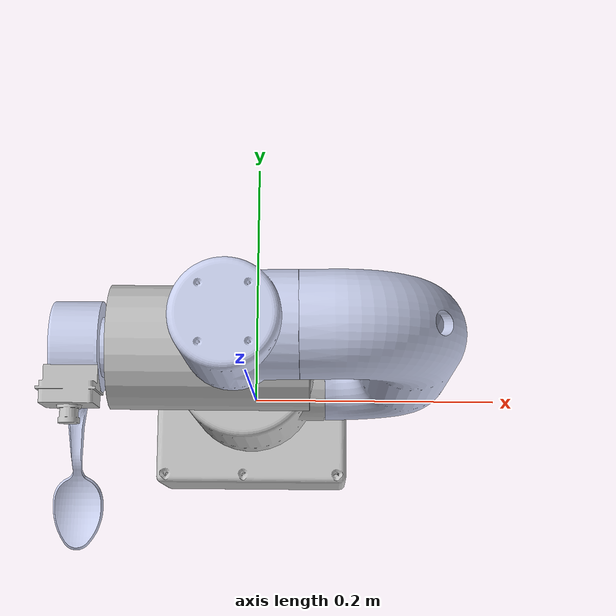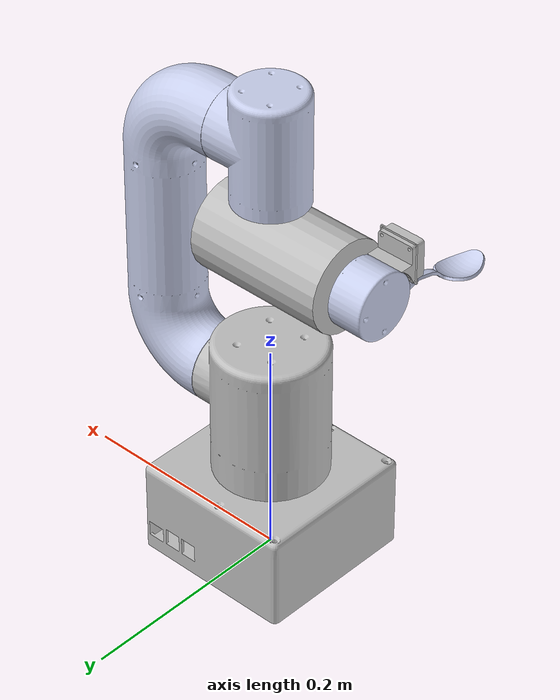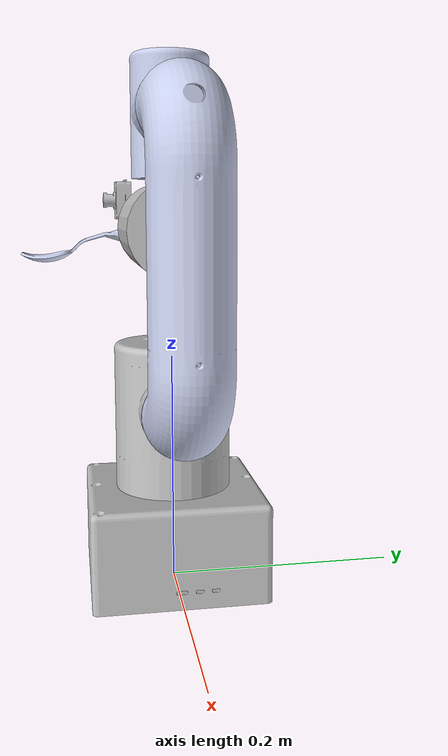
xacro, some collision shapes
<?xml version="1.0"?>
<robot xmlns:xacro="http://www.ros.org/wiki/xacro" name="FOBOT">
    <xacro:arg name="initial_positions_file" default="initial_positions.yaml" />

    <!-- Import FOBOT urdf file -->
    <xacro:include filename="$(find robot_pkg)/urdf/robot.urdf.xacro" />

    <!-- Import control_xacro -->
    <xacro:include filename="FOBOT.ros2_control.xacro" />

    <xacro:FOBOT_ros2_control name="FakeSystem" initial_positions_file="$(arg initial_positions_file)"/>

</robot>

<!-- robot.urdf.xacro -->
<robot
  name="FOBOT" xmlns:xacro="http://www.ros.org/wiki/xacro">
  <link name="world_link" />

  <joint name="world_joint" type="fixed">
    <parent link="world_link" />
    <child link="base_link" />
    <origin xyz="0 0 0" rpy="0 0 0" />
  </joint>
  <link
    name="base_link">
    <inertial>
      <origin
        xyz="-0.000324527792386832 0.000535590007123509 0.0536555243566054"
        rpy="0 0 0" />
      <mass
        value="0.640667020480894" />
      <inertia
        ixx="0.00143547613681385"
        ixy="2.95444591614989E-05"
        ixz="4.77247209910437E-06"
        iyy="0.00139278953446347"
        iyz="5.88479191836546E-06"
        izz="0.00256812979918848" />
    </inertial>
    <visual>
      <origin
        xyz="0 0 0"
        rpy="0 0 0" />
      <geometry>
        <mesh
          filename="package://robot_pkg/urdf/meshes/base_link.STL" />
      </geometry>
      <material
        name="">
        <color
          rgba="0.752941176470588 0.752941176470588 0.752941176470588 1" />
      </material>
    </visual>
    <collision>
      <origin
        xyz="0 0 0.045"
        rpy="0 0 0" />
      <geometry>
        <box size="0.15 0.15 0.085" />
      </geometry>
    </collision>
  </link>
  <link
    name="link_hombro">
    <inertial>
      <origin
        xyz="0.0177586720760899 0.000311723505450981 0.0594351103623852"
        rpy="0 0 0" />
      <mass
        value="0.654879795952153" />
      <inertia
        ixx="0.000626450707440152"
        ixy="1.31559228548189E-06"
        ixz="8.57966162417347E-07"
        iyy="0.000551741556799818"
        iyz="1.80815567358232E-08"
        izz="0.000585197394693305" />
    </inertial>
    <visual>
      <origin
        xyz="0 0 0"
        rpy="0 0 0" />
      <geometry>
        <mesh
          filename="package://robot_pkg/urdf/meshes/link_hombro.STL" />
      </geometry>
      <material
        name="">
        <color
          rgba="0.752941176470588 0.752941176470588 0.752941176470588 1" />
      </material>
    </visual>
    <collision>
      <origin
        xyz="0 0 0.07"
        rpy="0 0 0" />
      <geometry>
        <cylinder radius="0.06" length="0.125" />
      </geometry>
    </collision>
  </link>
  <joint
    name="joint_hombro"
    type="revolute">
    <origin
      xyz="0 0 0.0831"
      rpy="0 0 0" />
    <parent
      link="base_link" />
    <child
      link="link_hombro" />
    <axis
      xyz="0 0 1" />
    <limit
      lower="-1.57"
      upper="1.57"
      effort="4.1"
      velocity="4.81" />
  </joint>
  <link
    name="link_hombro_codo">
    <inertial>
      <origin
        xyz="0.00174671434810424 0.127639245502884 0.0995470053851245"
        rpy="0 0 0" />
      <mass
        value="0.36538432537355" />
      <inertia
        ixx="0.000616796454997089"
        ixy="2.2456451717145E-07"
        ixz="-1.67085745350063E-06"
        iyy="0.000411906520965051"
        iyz="1.27865283508023E-05"
        izz="0.000521599070927461" />
    </inertial>
    <visual>
      <origin
        xyz="0 0 0"
        rpy="0 0 0" />
      <geometry>
        <mesh
          filename="package://robot_pkg/urdf/meshes/link_hombro_codo.STL" />
      </geometry>
      <material
        name="">
        <color
          rgba="0.792156862745098 0.819607843137255 0.933333333333333 1" />
      </material>
    </visual>
    <collision>
      <origin
        xyz="0.002 0.125 0.13"
        rpy="0 0 0" />
      <geometry>
        <box size="0.066 0.3 0.1"/>
      </geometry>
    </collision>
  </link>
  <joint
    name="joint_hombro_codo"
    type="revolute">
    <origin
      xyz="0 0 0.07715"
      rpy="1.5708 0 1.5708" />
    <parent
      link="link_hombro" />
    <child
      link="link_hombro_codo" />
    <axis
      xyz="0 0 1" />
    <limit
      lower="-1.57"
      upper="1.57"
      effort="10"
      velocity="3.14" />
  </joint>
  <link
    name="link_codo">
    <inertial>
      <origin
        xyz="-0.00516428980556016 -0.000391330935633924 0.0223035602244459"
        rpy="0 0 0" />
      <mass
        value="0.314093246133126" />
      <inertia
        ixx="0.000129290304605087"
        ixy="1.83556293935212E-08"
        ixz="-1.02963704000623E-06"
        iyy="0.000153078587799069"
        iyz="-4.65364129734989E-07"
        izz="0.000179583941717259" />
    </inertial>
    <visual>
      <origin
        xyz="0 0 0"
        rpy="0 0 0" />
      <geometry>
        <mesh
          filename="package://robot_pkg/urdf/meshes/link_codo.STL" />
      </geometry>
      <material
        name="">
        <color
          rgba="0.792156862745098 0.819607843137255 0.933333333333333 1" />
      </material>
    </visual>
    <collision>
      <origin
        xyz="0 0 0"
        rpy="0 1.5708 0" />
      <geometry>
        <cylinder radius="0.0375" length="0.108" />
      </geometry>
    </collision>
  </link>
  <joint
    name="joint_codo"
    type="revolute">
    <origin
      xyz="0 0.246 0"
      rpy="0 0 1.5708" />
    <parent
      link="link_hombro_codo" />
    <child
      link="link_codo" />
    <axis
      xyz="0 0 -1" />
    <limit
      lower="-3.14"
      upper="3.14"
      effort="4.1"
      velocity="4.81" />
  </joint>
  <link
    name="link_codo_muneca">
    <inertial>
      <origin
        xyz="-1.39307723388693E-07 0.0135191619848798 0.0172025714731864"
        rpy="0 0 0" />
      <mass
        value="0.392047475790556" />
      <inertia
        ixx="0.000185882757835849"
        ixy="-8.56192744198215E-11"
        ixz="-2.24802807187992E-09"
        iyy="0.000170853298566717"
        iyz="8.72755120713694E-07"
        izz="0.000211338915615572" />
    </inertial>
    <visual>
      <origin
        xyz="0 0 0"
        rpy="0 0 0" />
      <geometry>
        <mesh
          filename="package://robot_pkg/urdf/meshes/link_codo_muneca.STL" />
      </geometry>
      <material
        name="">
        <color
          rgba="0.752941176470588 0.752941176470588 0.752941176470588 1" />
      </material>
    </visual>
    <collision>
      <origin
        xyz="0 0.017 0"
        rpy="1.5708 0 0" />
      <geometry>
        <cylinder radius="0.041" length="0.13" />
      </geometry>
    </collision>
  </link>
  <joint
    name="joint_codo_muneca"
    type="revolute">
    <origin
      xyz="-0.09705 0 0"
      rpy="-1.5708 0 -1.5708" />
    <parent
      link="link_codo" />
    <child
      link="link_codo_muneca" />
    <axis
      xyz="0 0 -1" />
    <limit
      lower="-2.2"
      upper="2.2"
      effort="4.1"
      velocity="4.81" />
  </joint>
  <link
    name="link_muneca">
    <inertial>
      <origin
        xyz="0.0011814 -0.00012981 -0.014057"
        rpy="0 0 0" />
      <mass
        value="0.051202" />
      <inertia
        ixx="1.3116E-05"
        ixy="6.3185E-08"
        ixz="3.0228E-07"
        iyy="1.0727E-05"
        iyz="4.2E-09"
        izz="1.7924E-05" />
    </inertial>
    <visual>
      <origin
        xyz="0 0 0"
        rpy="0 0 0" />
      <geometry>
        <mesh
          filename="package://robot_pkg/urdf/meshes/link_muneca.STL" />
      </geometry>
      <material
        name="">
        <color
          rgba="0.79216 0.81961 0.93333 1" />
      </material>
    </visual>
    <collision>
      <origin
        xyz="0 0 -0.017"
        rpy="0 0 0" />
      <geometry>
        <cylinder radius="0.033" length="0.03" />
      </geometry>
    </collision>
  </link>
  <joint
    name="joint_muneca"
    type="revolute">
    <origin
      xyz="0 0.086566 0"
      rpy="1.5708 0 0" />
    <parent
      link="link_codo_muneca" />
    <child
      link="link_muneca" />
    <axis
      xyz="0 0 -1" />
    <limit
      lower="-3.14"
      upper="3.14"
      effort="0.93"
      velocity="8.48" />
  </joint>
  <link
    name="link_herramienta">
    <inertial>
      <origin
        xyz="-0.0066648 -0.00010158 -0.053829"
        rpy="0 0 0" />
      <mass
        value="0.010917" />
      <inertia
        ixx="1.1999E-05"
        ixy="-9.9078E-09"
        ixz="-3.0436E-06"
        iyy="1.2645E-05"
        iyz="-4.6367E-08"
        izz="1.3949E-06" />
    </inertial>
    <visual>
      <origin
        xyz="0 0 0"
        rpy="0 0 0" />
      <geometry>
        <mesh
          filename="package://robot_pkg/urdf/meshes/link_herramienta.STL" />
      </geometry>
      <material
        name="">
        <color
          rgba="0.79216 0.81961 0.93333 1" />
      </material>
    </visual>
    <collision>
      <origin
        xyz="0 0 0"
        rpy="0 0 0" />
      <geometry>
        <mesh
          filename="package://robot_pkg/urdf/meshes/link_herramienta.STL" />
      </geometry>
    </collision>
  </link>
  <joint
    name="joint_herramienta"
    type="revolute">
    <origin
      xyz="0 -0.0075 -0.018384"
      rpy="1.5708 0 1.5708" />
    <parent
      link="link_muneca" />
    <child
      link="link_herramienta" />
    <axis
      xyz="0 0 -1" />
    <limit
      lower="-3.14"
      upper="3.14"
      effort="0.93"
      velocity="8.48" />
  </joint>
  <link name="link_tcp">

  </link>
  <joint
    name="joint_tcp_fixed"
    type="fixed">
    <origin
      xyz="0 0 -0.10829"
      rpy="0 1.5708 0" />
    <parent
      link="link_herramienta" />
    <child
      link="link_tcp" />
    <axis
      xyz="0 0 0" />
  </joint>
  <link
    name="link_camara">
    <inertial>
      <origin
        xyz="-0.019021 -9.3975E-05 -0.00037502"
        rpy="0 0 0" />
      <mass
        value="0.012812" />
      <inertia
        ixx="2.1216E-06"
        ixy="1.6377E-09"
        ixz="-1.5762E-08"
        iyy="1.2506E-06"
        iyz="-8.5728E-09"
        izz="1.4929E-06" />
    </inertial>
    <visual>
      <origin
        xyz="0 0 0"
        rpy="0 0 0" />
      <geometry>
        <mesh
          filename="package://robot_pkg/urdf/meshes/link_camara.STL" />
      </geometry>
      <material
        name="">
        <color
          rgba="0.75294 0.75294 0.75294 1" />
      </material>
    </visual>
    <collision>
      <origin
        xyz="-0.015 0 0"
        rpy="0 0 0" />
      <geometry>
        <box size="0.035 0.035 0.035" />
      </geometry>
    </collision>
  </link>
  <joint
    name="joint_camara_fixed"
    type="fixed">
    <origin
      xyz="-0.052668 0.025492 -0.018384"
      rpy="1.5708 0 -3.1416" />
    <parent
      link="link_muneca" />
    <child
      link="link_camara" />
    <axis
      xyz="0 0 0" />
  </joint>

  <ros2_control name="DynamixelSystem" type="system">
    <hardware>
      <plugin>dynamixel_hardware_interface/DynamixelHardware</plugin>

      <!-- COMUNICACIÓN, EN ESTE CASO SE HA PUESTO NOMBRE PERSONALIZADO AL PUERTO -->
      <param name="port_name">/dev/ttyUSB0</param>

      <!-- VELOCIDAD: 1000000, ES LA QUE UTILIZAN LOS MOTORES XM430 -->
      <param name="baud_rate">1000000</param>
      <param name="protocol_version">2.0</param>
      <param name="use_dummy">false</param>
      <param name="error_timeout_ms">1000</param>
      <param name="number_of_joints">6</param> <!-- NUMERO DE ARTICULACIONES -->
      <param name="number_of_transmissions">6</param> <!-- NUMERO DE TRANSMISIONES -->
      <param name="disable_torque_at_init">true</param> <!-- SE PARAN LOS MOTORES AL PRINCIPIO POR SEGURIDAD -->
      <param name="dynamixel_model_folder">/param/dxl_model</param> <!-- SE CARGAN LAS CONFIGURACIONES DE LOS MOTORES DYNAMIXEL -->

      <!-- MATRICES: para transmisión directa (obligatorio en este driver) -->
      <param name="transmission_to_joint_matrix">
      1,0,0,0,0,0,
      0,1,0,0,0,0,
      0,0,1,0,0,0,
      0,0,0,1,0,0,
      0,0,0,0,1,0,
      0,0,0,0,0,1
      </param>
      <param name="joint_to_transmission_matrix">
      1,0,0,0,0,0,
      0,1,0,0,0,0,
      0,0,1,0,0,0,
      0,0,0,1,0,0,
      0,0,0,0,1,0,
      0,0,0,0,0,1
      </param>

      <param name="ros_update_freq">200</param>
      <param name="dynamixel_state_pub_msg_name">dynamixel_hardware_interface/dxl_state</param>
      <param name="get_dynamixel_data_srv_name">dynamixel_hardware_interface/get_dxl_data</param>
      <param name="set_dynamixel_data_srv_name">dynamixel_hardware_interface/set_dxl_data</param>
      <param name="reboot_dxl_srv_name">dynamixel_hardware_interface/reboot_dxl</param>
      <param name="set_dxl_torque_srv_name">dynamixel_hardware_interface/set_dxl_torque</param>
    </hardware>

    <!-- MOTOR 1 INTERFACES NECESARIAS PARA EL FUNCIONAMIENTO-->
    <joint name="joint_hombro">
      <command_interface name="position"/>
      <state_interface name="position"/>
      <state_interface name="velocity"/>
      <state_interface name="effort"/>
    </joint>

    <joint name="joint_hombro_codo">
      <command_interface name="position"/>
      <state_interface name="position"/>
      <state_interface name="velocity"/>
      <state_interface name="effort"/>
    </joint>

    <joint name="joint_codo">
      <command_interface name="position"/>
      <state_interface name="position"/>
      <state_interface name="velocity"/>
      <state_interface name="effort"/>
    </joint>

    <joint name="joint_codo_muneca">
      <command_interface name="position"/>
      <state_interface name="position"/>
      <state_interface name="velocity"/>
      <state_interface name="effort"/>
    </joint>

    <joint name="joint_muneca">
      <command_interface name="position"/>
      <state_interface name="position"/>
      <state_interface name="velocity"/>
      <state_interface name="effort"/>
    </joint>

    <joint name="joint_herramienta">
      <command_interface name="position"/>
      <state_interface name="position"/>
      <state_interface name="velocity"/>
      <state_interface name="effort"/>
    </joint>

    <!-- RESTO DE DEFINICION JOINTS CON SU RESPECTIVO NOMBRE -->

    <gpio name="dxl1">
      <param name="type">dxl</param>
      <param name="ID">1</param> <!-- ID DEL MOTOR -->
      <command_interface name="Goal Position"/>
      <state_interface name="Present Position"/>
      <state_interface name="Present Velocity"/>
      <state_interface name="Present Current"/>
      <state_interface name="Torque Enable"/>
      <state_interface name="Present Input Voltage"/>
      <param name="Position P Gain">500</param>
      <param name="Position I Gain">50</param>
      <param name="Position D Gain">200</param>
      <param name="Profile Velocity">20</param>
      <param name="Profile Acceleration">10</param>
      <param name="Drive Mode">0</param>
      <param name="Return Delay Time">0</param>
    </gpio>

    <gpio name="dxl2">
      <param name="type">dxl</param>
      <param name="ID">2</param> <!-- ID DEL MOTOR -->
      <command_interface name="Goal Position"/>
      <state_interface name="Present Position"/>
      <state_interface name="Present Velocity"/>
      <state_interface name="Present Current"/>
      <state_interface name="Torque Enable"/>
      <state_interface name="Present Input Voltage"/>
      <param name="Position P Gain">800</param>
      <param name="Position I Gain">300</param>
      <param name="Position D Gain">500</param>
      <param name="Profile Velocity">20</param>
      <param name="Profile Acceleration">10</param>
      <param name="Drive Mode">0</param>
      <param name="Return Delay Time">0</param>
    </gpio>

    <gpio name="dxl3">
      <param name="type">dxl</param>
      <param name="ID">3</param> <!-- ID DEL MOTOR -->
      <command_interface name="Goal Position"/>
      <state_interface name="Present Position"/>
      <state_interface name="Present Velocity"/>
      <state_interface name="Present Current"/>
      <state_interface name="Torque Enable"/>
      <state_interface name="Present Input Voltage"/>
      <param name="Position P Gain">350</param>
      <param name="Position I Gain">250</param>
      <param name="Position D Gain">1000</param>
      <param name="Profile Velocity">20</param>
      <param name="Profile Acceleration">10</param>
      <param name="Drive Mode">0</param>
      <param name="Return Delay Time">0</param>
    </gpio>

    <gpio name="dxl4">
      <param name="type">dxl</param>
      <param name="ID">4</param> <!-- ID DEL MOTOR -->
      <command_interface name="Goal Position"/>
      <state_interface name="Present Position"/>
      <state_interface name="Present Velocity"/>
      <state_interface name="Present Current"/>
      <state_interface name="Torque Enable"/>
      <state_interface name="Present Input Voltage"/>
      <param name="Position P Gain">600</param>
      <param name="Position I Gain">100</param>
      <param name="Position D Gain">50</param>
      <param name="Profile Velocity">20</param>
      <param name="Profile Acceleration">10</param>
      <param name="Drive Mode">0</param>
      <param name="Return Delay Time">0</param>
    </gpio>

    <gpio name="dxl5">
      <param name="type">dxl</param>
      <param name="ID">5</param> <!-- ID DEL MOTOR -->
      <command_interface name="Goal Position"/>
      <state_interface name="Present Position"/>
      <state_interface name="Present Velocity"/>
      <state_interface name="Present Current"/>
      <state_interface name="Torque Enable"/>
      <state_interface name="Present Input Voltage"/>
      <param name="Position P Gain">700</param>
      <param name="Position I Gain">200</param>
      <param name="Position D Gain">900</param>
      <param name="Profile Velocity">20</param>
      <param name="Profile Acceleration">10</param>
      <param name="Drive Mode">0</param>
      <param name="Return Delay Time">0</param>
    </gpio>

    <gpio name="dxl6">
      <param name="type">dxl</param>
      <param name="ID">6</param> <!-- ID DEL MOTOR -->
      <command_interface name="Goal Position"/>
      <state_interface name="Present Position"/>
      <state_interface name="Present Velocity"/>
      <state_interface name="Present Current"/>
      <state_interface name="Torque Enable"/>
      <state_interface name="Present Input Voltage"/>
      <param name="Position P Gain">350</param>
      <param name="Position I Gain">120</param>
      <param name="Position D Gain">900</param>
      <param name="Profile Velocity">20</param>
      <param name="Profile Acceleration">10</param>
      <param name="Drive Mode">0</param>
      <param name="Return Delay Time">0</param>
    </gpio>

    <!-- RESTO DE DEFINICION DE MOTORES -->

  </ros2_control>

</robot>
